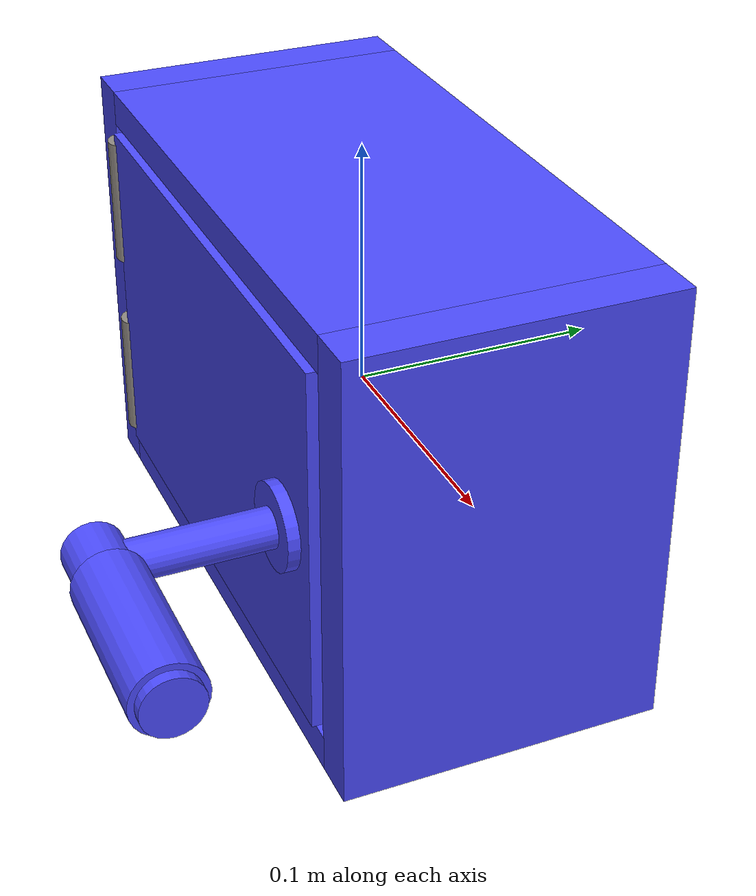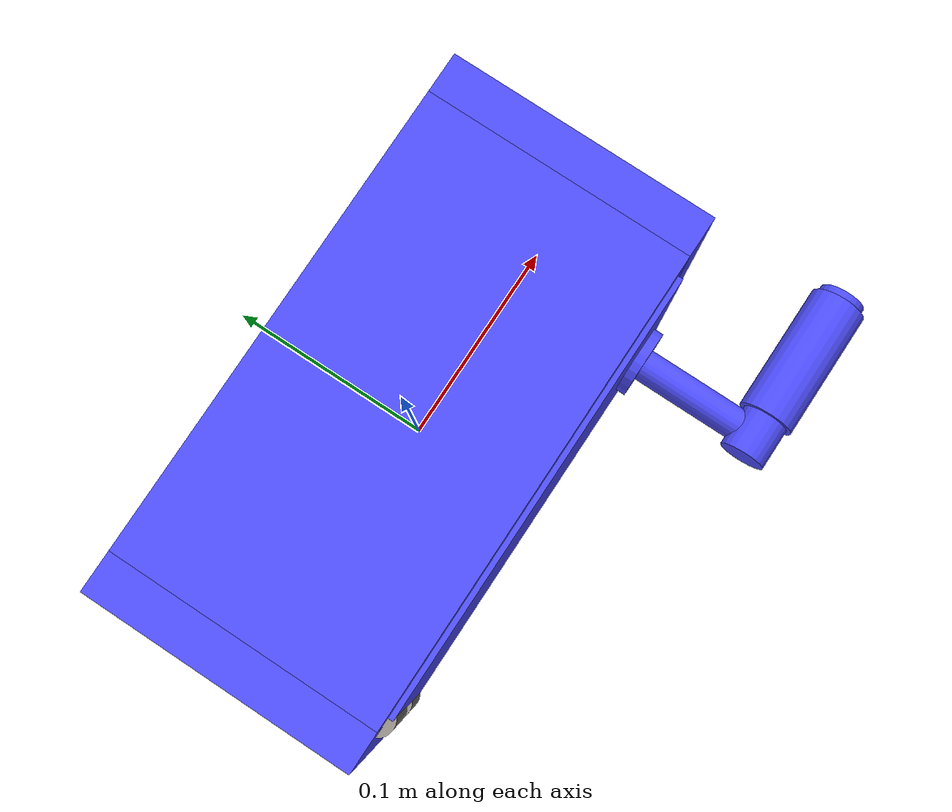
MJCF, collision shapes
<?xml version="1.0" encoding="UTF-8"?>
<mujoco model="doorlock">
    <compiler angle="radian" inertiafromgeom="auto" inertiagrouprange="1 5" />

    <asset>
        <texture name="T_dl_met" type="cube" file="textures/metal1.png" />
        <texture name="T_dl_met2" type="cube" file="textures/metal2.png" />

        <material name="dl_col" rgba="0.3 0.3 1.0 0.5" shininess="0" specular="0" />
        <material name="dl_metal" rgba=".75 .75 .75 1" texture="T_dl_met" texuniform="true" shininess="1" reflectance="1" specular="1" />
        <material name="dl_metal2" rgba=".3 .32 .35 1" texture="T_dl_met2" texuniform="true" shininess="1" reflectance="1" specular="1" />
    </asset>

    <default>
        <default class="dl_base">
            <joint armature="0.001" damping="2" limited="true" />
            <geom conaffinity="0" contype="0" group="1" type="mesh" />
            <position ctrllimited="true" ctrlrange="0 1.57" />
            <default class="dl_viz">
                <geom condim="4" type="mesh" />
            </default>
            <default class="dl_col">
                <geom conaffinity="1" condim="3" contype="1" group="4" material="dl_col" solimp="0.99 0.99 0.01" solref="0.01 1" />
            </default>
            <site type="sphere" size=".01" rgba="0 1 0 1" group="5" />
        </default>
    </default>

    <asset>
        <mesh file="metaworld/doorlock/safe.stl" name="safe" scale="0.6 0.6 0.6" />
        <mesh file="metaworld/doorlock/door.stl" name="door" scale="0.6 0.6 0.6" />
        <mesh file="metaworld/doorlock/door_handle.stl" name="door_handle" scale="0.6 0.6 0.6" />
        <mesh file="metaworld/doorlock/handle_base.stl" name="handle_base" scale="0.6 0.6 0.6" />
    </asset>

    <worldbody>
        <body childclass="dl_base" name="doorlock_base" pos="0 0 0" euler="0 0 0">

            <geom material="dl_metal2" mesh="safe" />
            <geom class="dl_col" pos="-0.1224 0 0" size="0.0096 0.0636 0.09" type="box" />
            <geom class="dl_col" pos="0.1224 0 0" size="0.0096 0.0636 0.09" type="box" />
            <geom class="dl_col" pos="0 0 0.0828" size="0.1128 0.0636 0.0072" type="box" />
            <geom class="dl_col" pos="0 0 -0.0828" size="0.1134 0.0636 0.0072" type="box" />
            <geom class="dl_col" pos="0 0.0564 0" size="0.1128 0.0072 0.0756" type="box" />

            <body name="door_link_virtual" pos="-0.111 -0.06 0">
                <body name="door_link_virtual_handle" pos="0.195 -0.0372 0">
                    <site name="door_handle_center_target" pos="0 0 0.0001" group="5" />
                </body>
            </body>

            <body name="door_link" pos="-0.111 -0.06 0">
                <site name="door_handle_center" pos="0.195 -0.0372 0" group="5" />
                <joint name="door_joint" type="hinge" axis="0 0 1" range="-1.2 0" />
                <geom material="dl_metal2" mesh="door" pos="0.111 0 0" />
                <geom material="dl_metal" euler="1.57 1.57 1.57" mesh="door_handle" pos="0.24 -0.015 0" name="door_handle" />
                <geom material="dl_metal" mesh="handle_base" pos="0.195 -0.0036 0" />
                <geom material="dl_metal" pos="0 0 0.042" size="0.0078 0.027" type="cylinder" />
                <geom material="dl_metal" pos="0 0 -0.042" size="0.0078 0.027" type="cylinder" />

                <geom class="dl_col" euler="1.57 0 0" pos="0.195 -0.0036 0" size="0.0168 0.0072" type="cylinder" />
                <geom class="dl_col" euler="1.57 0 0" pos="0.195 -0.039 0" size="0.0078 0.0282" type="cylinder" />
                <geom class="dl_col" euler="0 1.57 0" pos="0.2286 -0.072 0" size="0.0114 0.045" type="cylinder" />
                <geom class="dl_col" euler="0 1.57 0" pos="0.237 -0.072 0" size="0.0138 0.0324" type="cylinder" />
                <geom class="dl_col" pos="0.111 0.0 0.0" size="0.108 0.006 0.0738" type="box" />
            </body>
        </body>
    </worldbody>
</mujoco>
